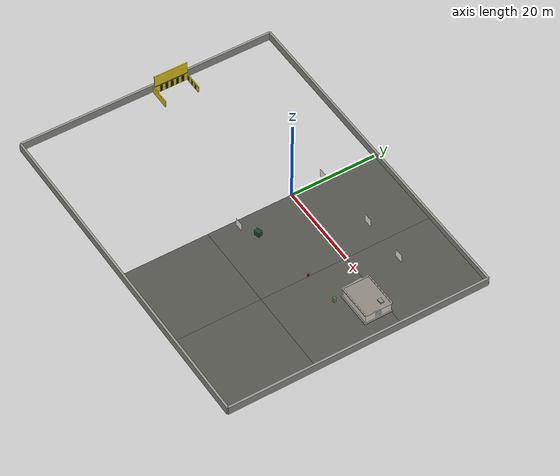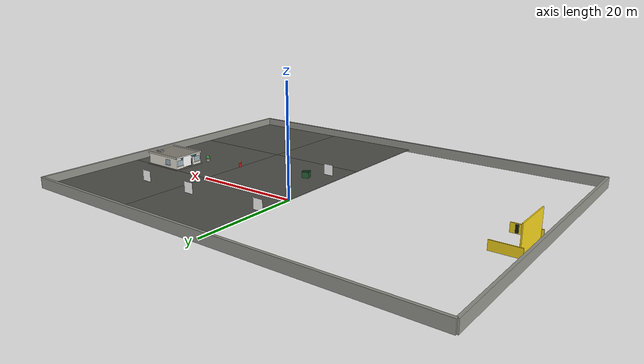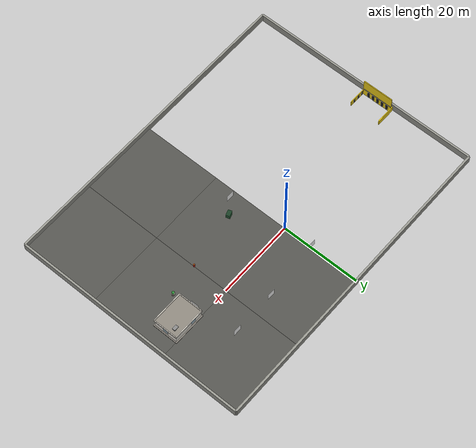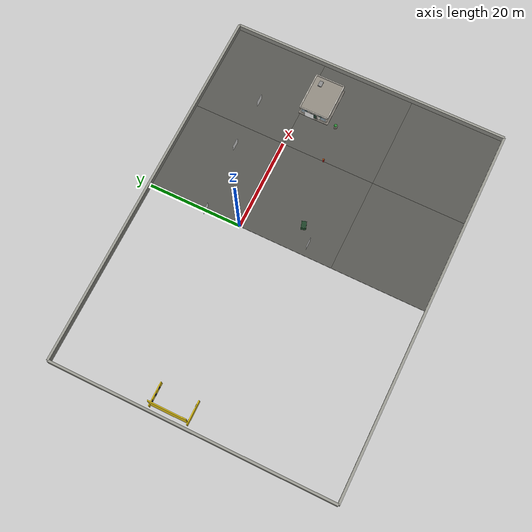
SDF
<sdf version="1.9">
 <world name="default">
  <include><name>qr4_house_1</name><uri>model://qr4</uri><pose>0 7.5 1.5 1.5708 0 0</pose></include>
  <include><name>qr5_house_2</name><uri>model://qr5</uri><pose>15 8.5 1.5 1.5708 0 0</pose></include>
  <include><name>qr6_house_3</name><uri>model://qr6</uri><pose>26.0633 8.5 1.5 1.5708 0 0</pose></include>
  <include><name>qr7_fast_food</name><uri>model://qr7</uri><pose>2.2 -14 1.5 -1.5708 0 0</pose></include>
  <include>
   <name>qr10_community_clinic</name>
   <uri>model://qr10</uri>
   <pose>27.5 -2.2 1.5 0 -1.5708 0</pose>
  </include>
  <model name="asphalt_plane">
   <static>1</static>
   <link name="link">
    <collision name="collision"><geometry><box><size>20 20 0.1</size></box></geometry></collision>
    <visual name="visual">
     <cast_shadows>0</cast_shadows>
     <geometry><box><size>20 20 0.1</size></box></geometry>
     <material>
      <ambient>0.18 0.18 0.17 1</ambient>
      <diffuse>0.32 0.32 0.30 1</diffuse>
      <specular>0.05 0.05 0.05 1</specular>
      <emissive>0 0 0 1</emissive>
     </material>
    </visual>
    <velocity_decay><linear>0</linear><angular>0</angular></velocity_decay>
   </link>
   <pose>10 10 0 0 0 0</pose>
  </model>
  <model name="asphalt_plane_0">
   <static>1</static>
   <link name="link">
    <collision name="collision"><geometry><box><size>20 20 0.1</size></box></geometry></collision>
    <visual name="visual">
     <cast_shadows>0</cast_shadows>
     <geometry><box><size>20 20 0.1</size></box></geometry>
     <material>
      <ambient>0.18 0.18 0.17 1</ambient>
      <diffuse>0.32 0.32 0.30 1</diffuse>
      <specular>0.05 0.05 0.05 1</specular>
      <emissive>0 0 0 1</emissive>
     </material>
    </visual>
    <velocity_decay><linear>0</linear><angular>0</angular></velocity_decay>
   </link>
   <pose>10 -10 0 0 0 0</pose>
  </model>
  <model name="asphalt_plane_4">
   <static>1</static>
   <link name="link">
    <collision name="collision"><geometry><box><size>20 20 0.1</size></box></geometry></collision>
    <visual name="visual">
     <cast_shadows>0</cast_shadows>
     <geometry><box><size>20 20 0.1</size></box></geometry>
     <material>
      <ambient>0.18 0.18 0.17 1</ambient>
      <diffuse>0.32 0.32 0.30 1</diffuse>
      <specular>0.05 0.05 0.05 1</specular>
      <emissive>0 0 0 1</emissive>
     </material>
    </visual>
    <velocity_decay><linear>0</linear><angular>0</angular></velocity_decay>
   </link>
   <pose>10 -30 0 0 0 0</pose>
  </model>
  <model name="asphalt_plane_5">
   <static>1</static>
   <link name="link">
    <collision name="collision"><geometry><box><size>20 20 0.1</size></box></geometry></collision>
    <visual name="visual">
     <cast_shadows>0</cast_shadows>
     <geometry><box><size>20 20 0.1</size></box></geometry>
     <material>
      <ambient>0.18 0.18 0.17 1</ambient>
      <diffuse>0.32 0.32 0.30 1</diffuse>
      <specular>0.05 0.05 0.05 1</specular>
      <emissive>0 0 0 1</emissive>
     </material>
    </visual>
    <velocity_decay><linear>0</linear><angular>0</angular></velocity_decay>
   </link>
   <pose>30 -30 0 0 0 0</pose>
  </model>
  <model name="asphalt_plane_6">
   <static>1</static>
   <link name="link">
    <collision name="collision"><geometry><box><size>20 20 0.1</size></box></geometry></collision>
    <visual name="visual">
     <cast_shadows>0</cast_shadows>
     <geometry><box><size>20 20 0.1</size></box></geometry>
     <material>
      <ambient>0.18 0.18 0.17 1</ambient>
      <diffuse>0.32 0.32 0.30 1</diffuse>
      <specular>0.05 0.05 0.05 1</specular>
      <emissive>0 0 0 1</emissive>
     </material>
    </visual>
    <velocity_decay><linear>0</linear><angular>0</angular></velocity_decay>
   </link>
   <pose>30 10 0 0 0 0</pose>
  </model>
  <model name="asphalt_plane_7">
   <static>1</static>
   <link name="link">
    <collision name="collision"><geometry><box><size>20 20 0.1</size></box></geometry></collision>
    <visual name="visual">
     <cast_shadows>0</cast_shadows>
     <geometry><box><size>20 20 0.1</size></box></geometry>
     <material>
      <ambient>0.18 0.18 0.17 1</ambient>
      <diffuse>0.32 0.32 0.30 1</diffuse>
      <specular>0.05 0.05 0.05 1</specular>
      <emissive>0 0 0 1</emissive>
     </material>
    </visual>
    <velocity_decay><linear>0</linear><angular>0</angular></velocity_decay>
   </link>
   <pose>30 -10 0 0 0 0</pose>
  </model>
  <model name="Docking Station Wall">
   <static>1</static>
   <link name="link">
    <collision name="collision">
     <pose>-39 -5 2.55 0 0 0</pose>
     <geometry><box><size>0.2 8 5.0</size></box></geometry>
    </collision>
    <collision name="left_side_wall_collision">
     <pose>-37 -1 0.85 0 0 0</pose>
     <geometry><box><size>5.0 0.2 1.6</size></box></geometry>
    </collision>
    <collision name="right_side_wall_collision">
     <pose>-37 -9 0.85 0 0 0</pose>
     <geometry><box><size>5.0 0.2 1.6</size></box></geometry>
    </collision>
    <visual name="visual">
     <pose>-39 -5 2.55 0 0 0</pose>
     <geometry><box><size>0.2 8 5.0</size></box></geometry>
     <material>
      <ambient>0.55 0.48 0.05 1</ambient>
      <diffuse>0.95 0.82 0.10 1</diffuse>
      <specular>0.30 0.26 0.06 1</specular>
      <emissive>0.20 0.16 0.02 1</emissive>
     </material>
    </visual>
    <visual name="left_side_wall_visual">
     <pose>-37 -1 0.85 0 0 0</pose>
     <geometry><box><size>5.0 0.2 1.6</size></box></geometry>
     <material>
      <ambient>0.55 0.48 0.05 1</ambient>
      <diffuse>0.95 0.82 0.10 1</diffuse>
      <specular>0.30 0.26 0.06 1</specular>
      <emissive>0.20 0.16 0.02 1</emissive>
     </material>
    </visual>
    <visual name="right_side_wall_visual">
     <pose>-37 -9 0.85 0 0 0</pose>
     <geometry><box><size>5.0 0.2 1.6</size></box></geometry>
     <material>
      <ambient>0.55 0.48 0.05 1</ambient>
      <diffuse>0.95 0.82 0.10 1</diffuse>
      <specular>0.30 0.26 0.06 1</specular>
      <emissive>0.20 0.16 0.02 1</emissive>
     </material>
    </visual>
    <visual name="docking_stripe_inner_1">
     <pose>-38.89 -7.4 1.0 0 0 0</pose>
     <geometry><box><size>0.04 0.65 1.9</size></box></geometry>
     <material>
      <ambient>0.05 0.05 0.05 1</ambient>
      <diffuse>0.10 0.10 0.10 1</diffuse>
      <specular>0.05 0.05 0.05 1</specular>
     </material>
    </visual>
    <visual name="docking_stripe_inner_2">
     <pose>-38.89 -6.1 1.0 0 0 0</pose>
     <geometry><box><size>0.04 0.65 1.9</size></box></geometry>
     <material>
      <ambient>0.05 0.05 0.05 1</ambient>
      <diffuse>0.10 0.10 0.10 1</diffuse>
      <specular>0.05 0.05 0.05 1</specular>
     </material>
    </visual>
    <visual name="docking_stripe_inner_3">
     <pose>-38.89 -4.8 1.0 0 0 0</pose>
     <geometry><box><size>0.04 0.65 1.9</size></box></geometry>
     <material>
      <ambient>0.05 0.05 0.05 1</ambient>
      <diffuse>0.10 0.10 0.10 1</diffuse>
      <specular>0.05 0.05 0.05 1</specular>
     </material>
    </visual>
    <visual name="docking_stripe_inner_4">
     <pose>-38.89 -3.5 1.0 0 0 0</pose>
     <geometry><box><size>0.04 0.65 1.9</size></box></geometry>
     <material>
      <ambient>0.05 0.05 0.05 1</ambient>
      <diffuse>0.10 0.10 0.10 1</diffuse>
      <specular>0.05 0.05 0.05 1</specular>
     </material>
    </visual>
    <visual name="docking_stripe_inner_5">
     <pose>-38.89 -2.2 1.0 0 0 0</pose>
     <geometry><box><size>0.04 0.65 1.9</size></box></geometry>
     <material>
      <ambient>0.05 0.05 0.05 1</ambient>
      <diffuse>0.10 0.10 0.10 1</diffuse>
      <specular>0.05 0.05 0.05 1</specular>
     </material>
    </visual>
    <visual name="docking_kickplate_top">
     <pose>-38.89 -5 2.10 0 0 0</pose>
     <geometry><box><size>0.04 7.9 0.25</size></box></geometry>
     <material>
      <ambient>0.05 0.05 0.05 1</ambient>
      <diffuse>0.12 0.12 0.12 1</diffuse>
      <specular>0.05 0.05 0.05 1</specular>
     </material>
    </visual>
    <visual name="docking_stripe_left_1">
     <pose>-38.4 -1.11 0.85 0 0 0</pose>
     <geometry><box><size>0.55 0.04 1.4</size></box></geometry>
     <material><ambient>0.05 0.05 0.05 1</ambient><diffuse>0.10 0.10 0.10 1</diffuse></material>
    </visual>
    <visual name="docking_stripe_left_2">
     <pose>-37.0 -1.11 0.85 0 0 0</pose>
     <geometry><box><size>0.55 0.04 1.4</size></box></geometry>
     <material><ambient>0.05 0.05 0.05 1</ambient><diffuse>0.10 0.10 0.10 1</diffuse></material>
    </visual>
    <visual name="docking_stripe_left_3">
     <pose>-35.6 -1.11 0.85 0 0 0</pose>
     <geometry><box><size>0.55 0.04 1.4</size></box></geometry>
     <material><ambient>0.05 0.05 0.05 1</ambient><diffuse>0.10 0.10 0.10 1</diffuse></material>
    </visual>
    <visual name="docking_stripe_right_1">
     <pose>-38.4 -8.89 0.85 0 0 0</pose>
     <geometry><box><size>0.55 0.04 1.4</size></box></geometry>
     <material><ambient>0.05 0.05 0.05 1</ambient><diffuse>0.10 0.10 0.10 1</diffuse></material>
    </visual>
    <visual name="docking_stripe_right_2">
     <pose>-37.0 -8.89 0.85 0 0 0</pose>
     <geometry><box><size>0.55 0.04 1.4</size></box></geometry>
     <material><ambient>0.05 0.05 0.05 1</ambient><diffuse>0.10 0.10 0.10 1</diffuse></material>
    </visual>
    <visual name="docking_stripe_right_3">
     <pose>-35.6 -8.89 0.85 0 0 0</pose>
     <geometry><box><size>0.55 0.04 1.4</size></box></geometry>
     <material><ambient>0.05 0.05 0.05 1</ambient><diffuse>0.10 0.10 0.10 1</diffuse></material>
    </visual>
   </link>
  </model>
  <model name="boundary_walls">
   <static>1</static>
   <link name="link">
    <collision name="north_wall_collision">
     <pose>0 20.25 0.55 0 0 0</pose>
     <geometry><box><size>80.5 0.5 2.0</size></box></geometry>
    </collision>
    <collision name="south_wall_collision">
     <pose>0 -40.25 0.55 0 0 0</pose>
     <geometry><box><size>80.5 0.5 2.0</size></box></geometry>
    </collision>
    <collision name="east_wall_collision">
     <pose>40.25 -10 0.55 0 0 0</pose>
     <geometry><box><size>0.5 60.5 2.0</size></box></geometry>
    </collision>
    <collision name="west_wall_collision">
     <pose>-40.25 -10 0.55 0 0 0</pose>
     <geometry><box><size>0.5 60.5 2.0</size></box></geometry>
    </collision>
    <visual name="north_wall_visual">
     <pose>0 20.25 0.55 0 0 0</pose>
     <geometry><box><size>80.5 0.5 2.0</size></box></geometry>
     <material>
      <ambient>0.35 0.35 0.33 1</ambient>
      <diffuse>0.58 0.58 0.55 1</diffuse>
      <specular>0.08 0.08 0.08 1</specular>
      <emissive>0 0 0 1</emissive>
     </material>
    </visual>
    <visual name="south_wall_visual">
     <pose>0 -40.25 0.55 0 0 0</pose>
     <geometry><box><size>80.5 0.5 2.0</size></box></geometry>
     <material>
      <ambient>0.35 0.35 0.33 1</ambient>
      <diffuse>0.58 0.58 0.55 1</diffuse>
      <specular>0.08 0.08 0.08 1</specular>
      <emissive>0 0 0 1</emissive>
     </material>
    </visual>
    <visual name="east_wall_visual">
     <pose>40.25 -10 0.55 0 0 0</pose>
     <geometry><box><size>0.5 60.5 2.0</size></box></geometry>
     <material>
      <ambient>0.35 0.35 0.33 1</ambient>
      <diffuse>0.58 0.58 0.55 1</diffuse>
      <specular>0.08 0.08 0.08 1</specular>
      <emissive>0 0 0 1</emissive>
     </material>
    </visual>
    <visual name="west_wall_visual">
     <pose>-40.25 -10 0.55 0 0 0</pose>
     <geometry><box><size>0.5 60.5 2.0</size></box></geometry>
     <material>
      <ambient>0.35 0.35 0.33 1</ambient>
      <diffuse>0.58 0.58 0.55 1</diffuse>
      <specular>0.08 0.08 0.08 1</specular>
      <emissive>0 0 0 1</emissive>
     </material>
    </visual>
   </link>
  </model>
  <model name="community_clinic">
   <static>true</static>
   <pose>32.0 -3.0 0 0 0 3.14159</pose>
   <link name="clinic_link">
    <visual name="foundation_visual">
     <pose>0 0 0.1 0 0 0</pose>
     <geometry><box><size>8.6 6.6 0.2</size></box></geometry>
     <material>
      <ambient>0.45 0.43 0.40 1</ambient>
      <diffuse>0.50 0.48 0.45 1</diffuse>
      <specular>0.05 0.05 0.05 1</specular>
     </material>
    </visual>
    <collision name="foundation_collision">
     <pose>0 0 0.1 0 0 0</pose>
     <geometry><box><size>8.6 6.6 0.2</size></box></geometry>
    </collision>
    <visual name="building_visual">
     <pose>0 0 1.2 0 0 0</pose>
     <geometry><box><size>8.0 6.0 2.2</size></box></geometry>
     <material>
      <ambient>0.88 0.86 0.82 1</ambient>
      <diffuse>0.90 0.88 0.84 1</diffuse>
      <specular>0.04 0.04 0.04 1</specular>
     </material>
    </visual>
    <collision name="building_collision">
     <pose>0 0 1.2 0 0 0</pose>
     <geometry><box><size>8.0 6.0 2.2</size></box></geometry>
    </collision>
    <visual name="parapet_front">
     <pose>0 3.1 2.45 0 0 0</pose>
     <geometry><box><size>8.2 0.2 0.3</size></box></geometry>
     <material><ambient>0.80 0.78 0.74 1</ambient><diffuse>0.82 0.80 0.76 1</diffuse></material>
    </visual>
    <visual name="parapet_back">
     <pose>0 -3.1 2.45 0 0 0</pose>
     <geometry><box><size>8.2 0.2 0.3</size></box></geometry>
     <material><ambient>0.80 0.78 0.74 1</ambient><diffuse>0.82 0.80 0.76 1</diffuse></material>
    </visual>
    <visual name="parapet_left">
     <pose>-4.1 0 2.45 0 0 0</pose>
     <geometry><box><size>0.2 6.2 0.3</size></box></geometry>
     <material><ambient>0.80 0.78 0.74 1</ambient><diffuse>0.82 0.80 0.76 1</diffuse></material>
    </visual>
    <visual name="parapet_right">
     <pose>4.1 0 2.45 0 0 0</pose>
     <geometry><box><size>0.2 6.2 0.3</size></box></geometry>
     <material><ambient>0.80 0.78 0.74 1</ambient><diffuse>0.82 0.80 0.76 1</diffuse></material>
    </visual>
    <visual name="roof_slab">
     <pose>0 0 2.32 0 0 0</pose>
     <geometry><box><size>8.2 6.2 0.14</size></box></geometry>
     <material><ambient>0.52 0.50 0.46 1</ambient><diffuse>0.54 0.52 0.48 1</diffuse></material>
    </visual>
    <visual name="canopy_slab">
     <pose>3.6 0 2.05 0 0 0</pose>
     <geometry><box><size>1.2 2.4 0.12</size></box></geometry>
     <material><ambient>0.75 0.73 0.70 1</ambient><diffuse>0.77 0.75 0.72 1</diffuse></material>
    </visual>
    <visual name="canopy_pillar_left">
     <pose>4.05 0.85 1.05 0 0 0</pose>
     <geometry><box><size>0.15 0.15 2.1</size></box></geometry>
     <material><ambient>0.82 0.80 0.77 1</ambient><diffuse>0.84 0.82 0.79 1</diffuse></material>
    </visual>
    <visual name="canopy_pillar_right">
     <pose>4.05 -0.85 1.05 0 0 0</pose>
     <geometry><box><size>0.15 0.15 2.1</size></box></geometry>
     <material><ambient>0.82 0.80 0.77 1</ambient><diffuse>0.84 0.82 0.79 1</diffuse></material>
    </visual>
    <visual name="door_frame">
     <pose>4.02 0 1.0 0 0 0</pose>
     <geometry><box><size>0.06 1.5 2.05</size></box></geometry>
     <material><ambient>0.20 0.18 0.16 1</ambient><diffuse>0.22 0.20 0.18 1</diffuse></material>
    </visual>
    <visual name="door_left">
     <pose>4.04 0.30 0.95 0 0 0</pose>
     <geometry><box><size>0.05 0.62 1.90</size></box></geometry>
     <material><ambient>0.14 0.26 0.20 1</ambient><diffuse>0.16 0.28 0.22 1</diffuse></material>
    </visual>
    <visual name="door_right">
     <pose>4.04 -0.30 0.95 0 0 0</pose>
     <geometry><box><size>0.05 0.62 1.90</size></box></geometry>
     <material><ambient>0.14 0.26 0.20 1</ambient><diffuse>0.16 0.28 0.22 1</diffuse></material>
    </visual>
    <visual name="door_transom">
     <pose>4.04 0 1.97 0 0 0</pose>
     <geometry><box><size>0.04 1.30 0.20</size></box></geometry>
     <material><ambient>0.55 0.70 0.75 0.65</ambient><diffuse>0.55 0.70 0.75 0.65</diffuse></material>
    </visual>
    <visual name="fw1_glass">
     <pose>4.02 2.10 1.30 0 0 0</pose>
     <geometry><box><size>0.04 1.30 1.00</size></box></geometry>
     <material><ambient>0.42 0.60 0.72 0.55</ambient><diffuse>0.42 0.60 0.72 0.55</diffuse></material>
    </visual>
    <visual name="fw1_frame_top">
     <pose>4.04 2.10 1.86 0 0 0</pose>
     <geometry><box><size>0.05 1.36 0.06</size></box></geometry>
     <material><ambient>0.92 0.92 0.90 1</ambient><diffuse>0.94 0.94 0.92 1</diffuse></material>
    </visual>
    <visual name="fw1_frame_bot">
     <pose>4.04 2.10 0.76 0 0 0</pose>
     <geometry><box><size>0.05 1.36 0.06</size></box></geometry>
     <material><ambient>0.92 0.92 0.90 1</ambient><diffuse>0.94 0.94 0.92 1</diffuse></material>
    </visual>
    <visual name="fw1_sill">
     <pose>4.06 2.10 0.71 0 0 0</pose>
     <geometry><box><size>0.12 1.50 0.05</size></box></geometry>
     <material><ambient>0.80 0.78 0.75 1</ambient><diffuse>0.82 0.80 0.77 1</diffuse></material>
    </visual>
    <visual name="fw2_glass">
     <pose>4.02 -2.10 1.30 0 0 0</pose>
     <geometry><box><size>0.04 1.30 1.00</size></box></geometry>
     <material><ambient>0.42 0.60 0.72 0.55</ambient><diffuse>0.42 0.60 0.72 0.55</diffuse></material>
    </visual>
    <visual name="fw2_frame_top">
     <pose>4.04 -2.10 1.86 0 0 0</pose>
     <geometry><box><size>0.05 1.36 0.06</size></box></geometry>
     <material><ambient>0.92 0.92 0.90 1</ambient><diffuse>0.94 0.94 0.92 1</diffuse></material>
    </visual>
    <visual name="fw2_frame_bot">
     <pose>4.04 -2.10 0.76 0 0 0</pose>
     <geometry><box><size>0.05 1.36 0.06</size></box></geometry>
     <material><ambient>0.92 0.92 0.90 1</ambient><diffuse>0.94 0.94 0.92 1</diffuse></material>
    </visual>
    <visual name="fw2_sill">
     <pose>4.06 -2.10 0.71 0 0 0</pose>
     <geometry><box><size>0.12 1.50 0.05</size></box></geometry>
     <material><ambient>0.80 0.78 0.75 1</ambient><diffuse>0.82 0.80 0.77 1</diffuse></material>
    </visual>
    <visual name="bw1_glass">
     <pose>1.5 -3.03 1.30 0 0 0</pose>
     <geometry><box><size>1.30 0.04 1.00</size></box></geometry>
     <material><ambient>0.42 0.60 0.72 0.55</ambient><diffuse>0.42 0.60 0.72 0.55</diffuse></material>
    </visual>
    <visual name="bw1_sill">
     <pose>1.5 -3.06 0.71 0 0 0</pose>
     <geometry><box><size>1.50 0.12 0.05</size></box></geometry>
     <material><ambient>0.80 0.78 0.75 1</ambient><diffuse>0.82 0.80 0.77 1</diffuse></material>
    </visual>
    <visual name="lw1_glass">
     <pose>-4.03 0 1.30 0 0 0</pose>
     <geometry><box><size>0.04 1.30 1.00</size></box></geometry>
     <material><ambient>0.42 0.60 0.72 0.55</ambient><diffuse>0.42 0.60 0.72 0.55</diffuse></material>
    </visual>
    <visual name="lw1_sill">
     <pose>-4.06 0 0.71 0 0 0</pose>
     <geometry><box><size>0.12 1.50 0.05</size></box></geometry>
     <material><ambient>0.80 0.78 0.75 1</ambient><diffuse>0.82 0.80 0.77 1</diffuse></material>
    </visual>
    <visual name="sign_bracket">
     <pose>4.05 0 2.10 0 0 0</pose>
     <geometry><box><size>0.06 3.8 0.55</size></box></geometry>
     <material><ambient>0.30 0.32 0.34 1</ambient><diffuse>0.32 0.34 0.36 1</diffuse></material>
    </visual>
    <visual name="sign_face">
     <pose>4.08 0 2.10 0 0 0</pose>
     <geometry><box><size>0.04 3.6 0.45</size></box></geometry>
     <material><ambient>0.18 0.45 0.65 1</ambient><diffuse>0.20 0.48 0.68 1</diffuse></material>
    </visual>
    <visual name="cross_h">
     <pose>4.10 1.40 2.10 0 0 0</pose>
     <geometry><box><size>0.02 0.36 0.12</size></box></geometry>
     <material>
      <ambient>0.06 0.32 0.10 1</ambient>
      <diffuse>0.10 0.60 0.20 1</diffuse>
      <emissive>0.04 0.18 0.06 1</emissive>
     </material>
    </visual>
    <visual name="cross_v">
     <pose>4.10 1.40 2.10 0 0 0</pose>
     <geometry><box><size>0.02 0.12 0.36</size></box></geometry>
     <material>
      <ambient>0.06 0.32 0.10 1</ambient>
      <diffuse>0.10 0.60 0.20 1</diffuse>
      <emissive>0.04 0.18 0.06 1</emissive>
     </material>
    </visual>
    <visual name="pharmacy_cross_door_h">
     <pose>4.10 -1.40 2.10 0 0 0</pose>
     <geometry><box><size>0.02 0.36 0.12</size></box></geometry>
     <material>
      <ambient>0.06 0.32 0.10 1</ambient>
      <diffuse>0.10 0.60 0.20 1</diffuse>
      <emissive>0.04 0.18 0.06 1</emissive>
     </material>
    </visual>
    <visual name="pharmacy_cross_door_v">
     <pose>4.10 -1.40 2.10 0 0 0</pose>
     <geometry><box><size>0.02 0.12 0.36</size></box></geometry>
     <material>
      <ambient>0.06 0.32 0.10 1</ambient>
      <diffuse>0.10 0.60 0.20 1</diffuse>
      <emissive>0.04 0.18 0.06 1</emissive>
     </material>
    </visual>
    <visual name="pharmacy_rx_plaque">
     <pose>4.08 0.80 1.85 0 0 0</pose>
     <geometry><box><size>0.04 0.42 0.42</size></box></geometry>
     <material>
      <ambient>0.95 0.95 0.92 1</ambient>
      <diffuse>0.98 0.98 0.96 1</diffuse>
      <emissive>0.20 0.55 0.25 1</emissive>
     </material>
    </visual>
    <visual name="hvac_body">
     <pose>-2.5 -1.5 2.55 0 0 0</pose>
     <geometry><box><size>1.2 0.8 0.30</size></box></geometry>
     <material><ambient>0.48 0.48 0.48 1</ambient><diffuse>0.52 0.52 0.52 1</diffuse></material>
    </visual>
    <inertial>
     <mass>5000</mass>
     <inertia><ixx>1000</ixx><ixy>0</ixy><ixz>0</ixz><iyy>1000</iyy><iyz>0</iyz><izz>1000</izz></inertia>
    </inertial>
   </link>
  </model>
  <model name="restaurant_dumpster">
   <static>true</static>
   <pose>5.5 -11.5 0.6 0 0 0.3</pose>
   <link name="link">
    <collision name="collision"><geometry><box><size>1.4 1.0 1.2</size></box></geometry></collision>
    <visual name="body">
     <geometry><box><size>1.4 1.0 1.2</size></box></geometry>
     <material>
      <ambient>0.06 0.18 0.10 1</ambient>
      <diffuse>0.12 0.32 0.18 1</diffuse>
      <specular>0.08 0.10 0.08 1</specular>
      <emissive>0 0 0 1</emissive>
     </material>
    </visual>
    <visual name="lid">
     <pose>0 0 0.66 0 0.05 0</pose>
     <geometry><box><size>1.42 1.02 0.08</size></box></geometry>
     <material>
      <ambient>0.05 0.12 0.07 1</ambient>
      <diffuse>0.10 0.24 0.14 1</diffuse>
      <specular>0.06 0.06 0.06 1</specular>
     </material>
    </visual>
   </link>
  </model>
  <model name="firehouse_hydrant">
   <static>true</static>
   <pose>20.0 -9.0 0 0 0 0</pose>
   <link name="link">
    <collision name="collision_stem">
     <pose>0 0 0.4 0 0 0</pose>
     <geometry><cylinder><radius>0.18</radius><length>0.8</length></cylinder></geometry>
    </collision>
    <collision name="collision_cap">
     <pose>0 0 0.88 0 0 0</pose>
     <geometry><cylinder><radius>0.22</radius><length>0.16</length></cylinder></geometry>
    </collision>
    <visual name="stem">
     <pose>0 0 0.4 0 0 0</pose>
     <geometry><cylinder><radius>0.18</radius><length>0.8</length></cylinder></geometry>
     <material>
      <ambient>0.45 0.06 0.05 1</ambient>
      <diffuse>0.80 0.12 0.10 1</diffuse>
      <specular>0.25 0.10 0.08 1</specular>
      <emissive>0.04 0.01 0.01 1</emissive>
     </material>
    </visual>
    <visual name="cap">
     <pose>0 0 0.88 0 0 0</pose>
     <geometry><cylinder><radius>0.22</radius><length>0.16</length></cylinder></geometry>
     <material>
      <ambient>0.45 0.06 0.05 1</ambient>
      <diffuse>0.85 0.14 0.10 1</diffuse>
      <specular>0.30 0.12 0.10 1</specular>
     </material>
    </visual>
    <visual name="bonnet">
     <pose>0 0 0.99 0 0 0</pose>
     <geometry><sphere><radius>0.12</radius></sphere></geometry>
     <material>
      <ambient>0.55 0.55 0.10 1</ambient>
      <diffuse>0.92 0.92 0.12 1</diffuse>
      <specular>0.20 0.20 0.05 1</specular>
      <emissive>0.18 0.18 0.02 1</emissive>
     </material>
    </visual>
    <visual name="nozzle_left">
     <pose>-0.22 0 0.55 0 1.5708 0</pose>
     <geometry><cylinder><radius>0.05</radius><length>0.10</length></cylinder></geometry>
     <material><ambient>0.45 0.06 0.05 1</ambient><diffuse>0.80 0.12 0.10 1</diffuse></material>
    </visual>
    <visual name="nozzle_right">
     <pose>0.22 0 0.55 0 1.5708 0</pose>
     <geometry><cylinder><radius>0.05</radius><length>0.10</length></cylinder></geometry>
     <material><ambient>0.45 0.06 0.05 1</ambient><diffuse>0.80 0.12 0.10 1</diffuse></material>
    </visual>
   </link>
  </model>
  <model name="pharmacy_planter">
   <static>true</static>
   <pose>28.0 -8.0 0 0 0 0</pose>
   <link name="link">
    <collision name="collision">
     <pose>0 0 0.3 0 0 0</pose>
     <geometry><cylinder><radius>0.40</radius><length>0.60</length></cylinder></geometry>
    </collision>
    <visual name="pot">
     <pose>0 0 0.3 0 0 0</pose>
     <geometry><cylinder><radius>0.40</radius><length>0.60</length></cylinder></geometry>
     <material>
      <ambient>0.32 0.30 0.27 1</ambient>
      <diffuse>0.55 0.52 0.48 1</diffuse>
      <specular>0.08 0.08 0.08 1</specular>
      <emissive>0 0 0 1</emissive>
     </material>
    </visual>
    <visual name="pot_rim">
     <pose>0 0 0.6 0 0 0</pose>
     <geometry><cylinder><radius>0.42</radius><length>0.06</length></cylinder></geometry>
     <material>
      <ambient>0.40 0.38 0.34 1</ambient>
      <diffuse>0.70 0.66 0.62 1</diffuse>
      <specular>0.10 0.10 0.10 1</specular>
     </material>
    </visual>
    <visual name="foliage">
     <pose>0 0 0.85 0 0 0</pose>
     <geometry><sphere><radius>0.36</radius></sphere></geometry>
     <material>
      <ambient>0.08 0.28 0.10 1</ambient>
      <diffuse>0.18 0.55 0.22 1</diffuse>
      <specular>0.06 0.10 0.06 1</specular>
      <emissive>0.02 0.06 0.02 1</emissive>
     </material>
    </visual>
   </link>
  </model>
 </world>
</sdf>
